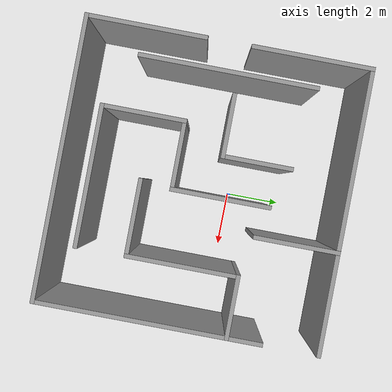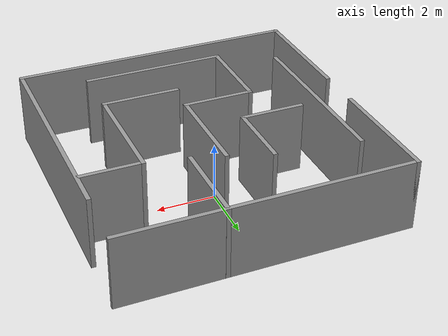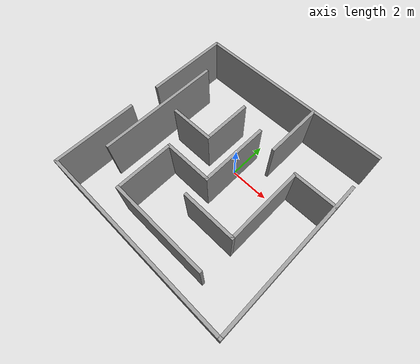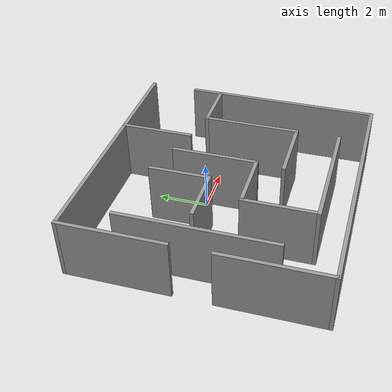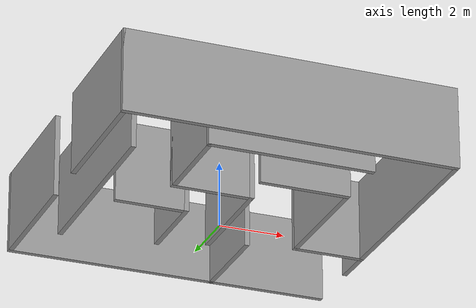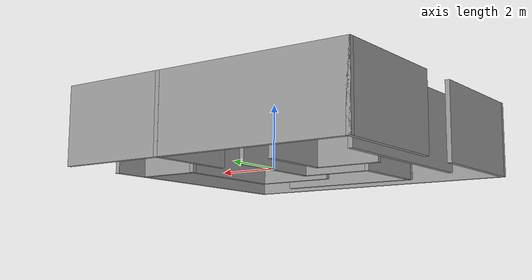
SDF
<?xml version='1.0'?>
<sdf version='1.7'>
  <model name='test_maze'>
    <pose>-0.14852 -1.02259 0 0 -0 0</pose>
    <link name='Wall_1'>
      <collision name='Wall_1_Collision'>
        <geometry>
          <box>
            <size>10 0.15 2.5</size>
          </box>
        </geometry>
        <pose>0 0 1.25 0 -0 0</pose>
      </collision>
      <visual name='Wall_1_Visual'>
        <pose>0 0 1.25 0 -0 0</pose>
        <geometry>
          <box>
            <size>10 0.15 2.5</size>
          </box>
        </geometry>
        <material>
          <script>
            <uri>file://media/materials/scripts/gazebo.material</uri>
            <name>Gazebo/Grey</name>
          </script>
          <ambient>1 1 1 1</ambient>
        </material>
        <meta>
          <layer>0</layer>
        </meta>
      </visual>
      <pose>0 -4.92574 0 0 -0 0</pose>
    </link>
    <link name='Wall_10'>
      <collision name='Wall_10_Collision'>
        <geometry>
          <box>
            <size>3.5 0.15 2.5</size>
          </box>
        </geometry>
        <pose>0 0 1.25 0 -0 0</pose>
      </collision>
      <visual name='Wall_10_Visual'>
        <pose>0 0 1.25 0 -0 0</pose>
        <geometry>
          <box>
            <size>3.5 0.15 2.5</size>
          </box>
        </geometry>
        <material>
          <script>
            <uri>file://media/materials/scripts/gazebo.material</uri>
            <name>Gazebo/Grey</name>
          </script>
          <ambient>1 1 1 1</ambient>
        </material>
        <meta>
          <layer>0</layer>
        </meta>
      </visual>
      <pose>0.324817 0.677595 0 0 -0 1.5708</pose>
    </link>
    <link name='Wall_12'>
      <collision name='Wall_12_Collision'>
        <geometry>
          <box>
            <size>2.25 0.15 2.5</size>
          </box>
        </geometry>
        <pose>0 0 1.25 0 -0 0</pose>
      </collision>
      <visual name='Wall_12_Visual'>
        <pose>0 0 1.25 0 -0 0</pose>
        <geometry>
          <box>
            <size>2.25 0.15 2.5</size>
          </box>
        </geometry>
        <material>
          <script>
            <uri>file://media/materials/scripts/gazebo.material</uri>
            <name>Gazebo/Grey</name>
          </script>
          <ambient>1 1 1 1</ambient>
        </material>
        <meta>
          <layer>0</layer>
        </meta>
      </visual>
      <pose>-2.14149 0.490866 0 0 -0 0</pose>
    </link>
    <link name='Wall_14'>
      <collision name='Wall_14_Collision'>
        <geometry>
          <box>
            <size>2.5 0.15 2.5</size>
          </box>
        </geometry>
        <pose>0 0 1.25 0 -0 0</pose>
      </collision>
      <visual name='Wall_14_Visual'>
        <pose>0 0 1.25 0 -0 0</pose>
        <geometry>
          <box>
            <size>2.5 0.15 2.5</size>
          </box>
        </geometry>
        <material>
          <script>
            <uri>file://media/materials/scripts/gazebo.material</uri>
            <name>Gazebo/Grey</name>
          </script>
          <ambient>1 1 1 1</ambient>
        </material>
        <meta>
          <layer>0</layer>
        </meta>
      </visual>
      <pose>-1.09149 1.66587 0 0 -0 1.5708</pose>
    </link>
    <link name='Wall_16'>
      <collision name='Wall_16_Collision'>
        <geometry>
          <box>
            <size>5.0007 0.15 2.5</size>
          </box>
        </geometry>
        <pose>0 0 1.25 0 -0 0</pose>
      </collision>
      <visual name='Wall_16_Visual'>
        <pose>0 0 1.25 0 -0 0</pose>
        <geometry>
          <box>
            <size>5.0007 0.15 2.5</size>
          </box>
        </geometry>
        <material>
          <script>
            <uri>file://media/materials/scripts/gazebo.material</uri>
            <name>Gazebo/Grey</name>
          </script>
          <ambient>1 1 1 1</ambient>
        </material>
        <meta>
          <layer>0</layer>
        </meta>
      </visual>
      <pose>0.399817 -3.84741 0 0 -0 0</pose>
    </link>
    <link name='Wall_18'>
      <collision name='Wall_18_Collision'>
        <geometry>
          <box>
            <size>2.25 0.15 2.5</size>
          </box>
        </geometry>
        <pose>0 0 1.25 0 -0 0</pose>
      </collision>
      <visual name='Wall_18_Visual'>
        <pose>0 0 1.25 0 -0 0</pose>
        <geometry>
          <box>
            <size>2.25 0.15 2.5</size>
          </box>
        </geometry>
        <material>
          <script>
            <uri>file://media/materials/scripts/gazebo.material</uri>
            <name>Gazebo/Grey</name>
          </script>
          <ambient>1 1 1 1</ambient>
        </material>
        <meta>
          <layer>0</layer>
        </meta>
      </visual>
      <pose>3.87482 1.75259 0 0 -0 0</pose>
    </link>
    <link name='Wall_2'>
      <collision name='Wall_2_Collision'>
        <geometry>
          <box>
            <size>8 0.15 2.5</size>
          </box>
        </geometry>
        <pose>0 0 1.25 0 -0 0</pose>
      </collision>
      <visual name='Wall_2_Visual'>
        <pose>0 0 1.25 0 -0 0</pose>
        <geometry>
          <box>
            <size>8 0.15 2.5</size>
          </box>
        </geometry>
        <material>
          <script>
            <uri>file://media/materials/scripts/gazebo.material</uri>
            <name>Gazebo/Grey</name>
          </script>
          <ambient>1 1 1 1</ambient>
        </material>
        <meta>
          <layer>0</layer>
        </meta>
      </visual>
      <pose>4.925 -1.00074 0 0 -0 1.5708</pose>
    </link>
    <link name='Wall_20'>
      <collision name='Wall_20_Collision'>
        <geometry>
          <box>
            <size>4 0.15 2.5</size>
          </box>
        </geometry>
        <pose>0 0 1.25 0 -0 0</pose>
      </collision>
      <visual name='Wall_20_Visual'>
        <pose>0 0 1.25 0 -0 0</pose>
        <geometry>
          <box>
            <size>4 0.15 2.5</size>
          </box>
        </geometry>
        <material>
          <script>
            <uri>file://media/materials/scripts/gazebo.material</uri>
            <name>Gazebo/Grey</name>
          </script>
          <ambient>1 1 1 1</ambient>
        </material>
        <meta>
          <layer>0</layer>
        </meta>
      </visual>
      <pose>2.82482 -0.172405 0 0 -0 -1.5708</pose>
    </link>
    <link name='Wall_21'>
      <collision name='Wall_21_Collision'>
        <geometry>
          <box>
            <size>2.75 0.15 2.5</size>
          </box>
        </geometry>
        <pose>0 0 1.25 0 -0 0</pose>
      </collision>
      <visual name='Wall_21_Visual'>
        <pose>0 0 1.25 0 -0 0</pose>
        <geometry>
          <box>
            <size>2.75 0.15 2.5</size>
          </box>
        </geometry>
        <material>
          <script>
            <uri>file://media/materials/scripts/gazebo.material</uri>
            <name>Gazebo/Grey</name>
          </script>
          <ambient>1 1 1 1</ambient>
        </material>
        <meta>
          <layer>0</layer>
        </meta>
      </visual>
      <pose>1.52482 -2.09741 0 0 -0 3.14159</pose>
    </link>
    <link name='Wall_24'>
      <collision name='Wall_24_Collision'>
        <geometry>
          <box>
            <size>3 0.15 2.5</size>
          </box>
        </geometry>
        <pose>0 0 1.25 0 -0 0</pose>
      </collision>
      <visual name='Wall_24_Visual'>
        <pose>0 0 1.25 0 -0 0</pose>
        <geometry>
          <box>
            <size>3 0.15 2.5</size>
          </box>
        </geometry>
        <material>
          <script>
            <uri>file://media/materials/scripts/gazebo.material</uri>
            <name>Gazebo/Grey</name>
          </script>
          <ambient>1 1 1 1</ambient>
        </material>
        <meta>
          <layer>0</layer>
        </meta>
      </visual>
      <pose>1.39679 3.50074 0 0 -0 -1.5708</pose>
    </link>
    <link name='Wall_26'>
      <collision name='Wall_26_Collision'>
        <geometry>
          <box>
            <size>4.25 0.15 2.5</size>
          </box>
        </geometry>
        <pose>0 0 1.25 0 -0 0</pose>
      </collision>
      <visual name='Wall_26_Visual'>
        <pose>0 0 1.25 0 -0 0</pose>
        <geometry>
          <box>
            <size>4.25 0.15 2.5</size>
          </box>
        </geometry>
        <material>
          <script>
            <uri>file://media/materials/scripts/gazebo.material</uri>
            <name>Gazebo/Grey</name>
          </script>
          <ambient>1 1 1 1</ambient>
        </material>
        <meta>
          <layer>0</layer>
        </meta>
      </visual>
      <pose>-4.925 2.87426 0 0 -0 -1.5708</pose>
    </link>
    <link name='Wall_28'>
      <collision name='Wall_28_Collision'>
        <geometry>
          <box>
            <size>4.25 0.15 2.5</size>
          </box>
        </geometry>
        <pose>0 0 1.25 0 -0 0</pose>
      </collision>
      <visual name='Wall_28_Visual'>
        <pose>0 0 1.25 0 -0 0</pose>
        <geometry>
          <box>
            <size>4.25 0.15 2.5</size>
          </box>
        </geometry>
        <material>
          <script>
            <uri>file://media/materials/scripts/gazebo.material</uri>
            <name>Gazebo/Grey</name>
          </script>
          <ambient>1 1 1 1</ambient>
        </material>
        <meta>
          <layer>0</layer>
        </meta>
      </visual>
      <pose>-4.925 -2.87574 0 0 -0 1.5708</pose>
    </link>
    <link name='Wall_4'>
      <collision name='Wall_4_Collision'>
        <geometry>
          <box>
            <size>10 0.15 2.5</size>
          </box>
        </geometry>
        <pose>0 0 1.25 0 -0 0</pose>
      </collision>
      <visual name='Wall_4_Visual'>
        <pose>0 0 1.25 0 -0 0</pose>
        <geometry>
          <box>
            <size>10 0.15 2.5</size>
          </box>
        </geometry>
        <material>
          <script>
            <uri>file://media/materials/scripts/gazebo.material</uri>
            <name>Gazebo/Grey</name>
          </script>
          <ambient>1 1 1 1</ambient>
        </material>
        <meta>
          <layer>0</layer>
        </meta>
      </visual>
      <pose>0 4.92426 0 0 -0 0</pose>
    </link>
    <link name='Wall_6'>
      <collision name='Wall_6_Collision'>
        <geometry>
          <box>
            <size>6.25 0.15 2.5</size>
          </box>
        </geometry>
        <pose>0 0 1.25 0 -0 0</pose>
      </collision>
      <visual name='Wall_6_Visual'>
        <pose>0 0 1.25 0 -0 0</pose>
        <geometry>
          <box>
            <size>6.25 0.15 2.5</size>
          </box>
        </geometry>
        <material>
          <script>
            <uri>file://media/materials/scripts/gazebo.material</uri>
            <name>Gazebo/Grey</name>
          </script>
          <ambient>1 1 1 1</ambient>
        </material>
        <meta>
          <layer>0</layer>
        </meta>
      </visual>
      <pose>-3.94149 0.151065 0 0 -0 -1.5708</pose>
    </link>
    <link name='Wall_8'>
      <collision name='Wall_8_Collision'>
        <geometry>
          <box>
            <size>3 0.15 2.5</size>
          </box>
        </geometry>
        <pose>0 0 1.25 0 -0 0</pose>
      </collision>
      <visual name='Wall_8_Visual'>
        <pose>0 0 1.25 0 -0 0</pose>
        <geometry>
          <box>
            <size>3 0.15 2.5</size>
          </box>
        </geometry>
        <material>
          <script>
            <uri>file://media/materials/scripts/gazebo.material</uri>
            <name>Gazebo/Grey</name>
          </script>
          <ambient>1 1 1 1</ambient>
        </material>
        <meta>
          <layer>0</layer>
        </meta>
      </visual>
      <pose>-2.02518 -2.4224 0 0 -0 1.5708</pose>
    </link>
    <link name='Wall_9'>
      <collision name='Wall_9_Collision'>
        <geometry>
          <box>
            <size>2.5 0.15 2.5</size>
          </box>
        </geometry>
        <pose>0 0 1.25 0 -0 0</pose>
      </collision>
      <visual name='Wall_9_Visual'>
        <pose>0 0 1.25 0 -0 0</pose>
        <geometry>
          <box>
            <size>2.5 0.15 2.5</size>
          </box>
        </geometry>
        <material>
          <script>
            <uri>file://media/materials/scripts/gazebo.material</uri>
            <name>Gazebo/Grey</name>
          </script>
          <ambient>1 1 1 1</ambient>
        </material>
        <meta>
          <layer>0</layer>
        </meta>
      </visual>
      <pose>-0.850183 -0.997405 0 0 -0 0</pose>
    </link>
    <static>1</static>
  </model>
</sdf>
